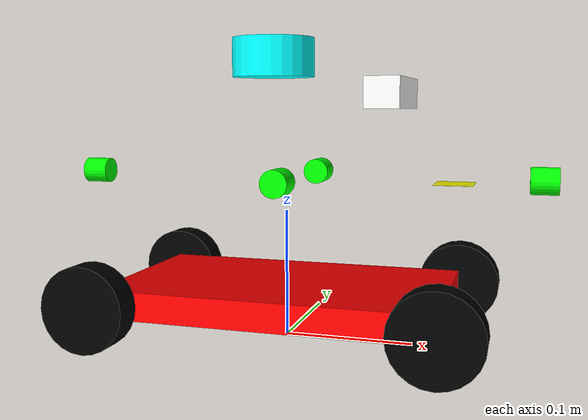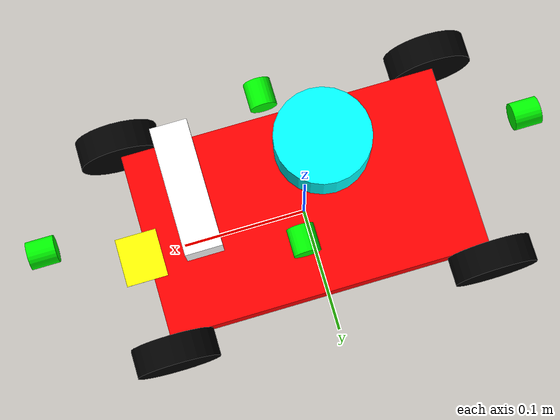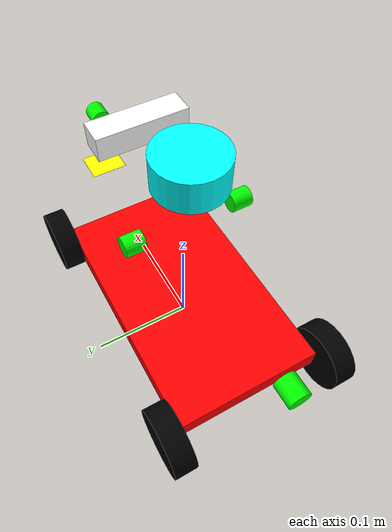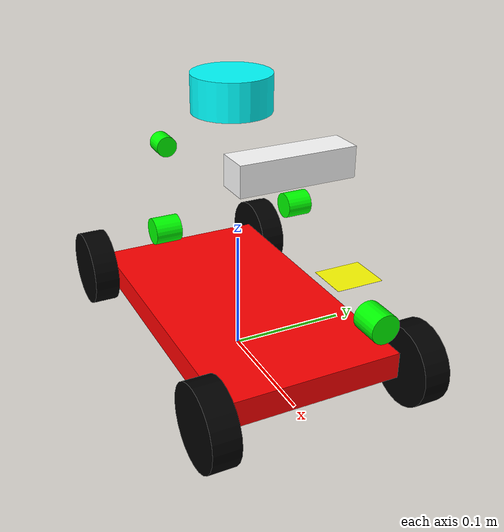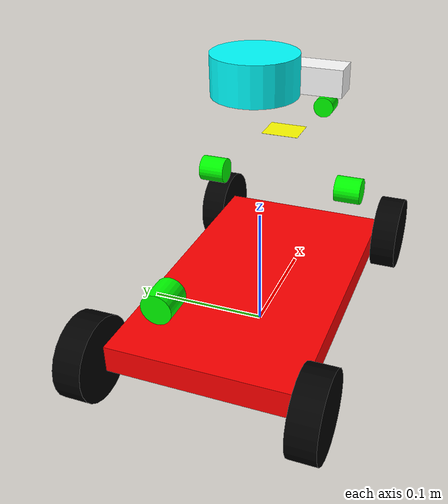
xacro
<?xml version="1.0"?>
<robot xmlns:xacro="http://www.ros.org/wiki/xacro" name="the_first_vehicle">

    <xacro:include filename="common_properties.xacro"/>
    <xacro:include filename="mobile_robot_gazebo.xacro"/>
    <xacro:property name="wheel_radius" value="0.033"/>
    <xacro:property name="wheel_width" value="0.022"/>
    <xacro:property name="chassis_length" value="0.256"/>
    <xacro:property name="csi_radius" value="0.01" />
    <xacro:property name="csi_length" value="0.02" />

    <xacro:macro name="csi" params="prefix">
        <link name="${prefix}">
           <visual>
            <geometry>
                <cylinder radius="${csi_radius}" length="${csi_length}"/>
            </geometry>
            <material name="green">
                <color rgba="0.0 1.0 0.0 1.0"/>
            </material>
            </visual>
            <collision>
                <geometry>
                    <box size="0.02 0.02 0.02"/>
                </geometry>
            </collision>

            <xacro:cylinder_inertia m="0.015" r="${csi_radius}" l="${csi_length}" o_xyz="0 0 0" o_rpy="0 0 0"/>
        </link>
    </xacro:macro>

    <xacro:macro name="wheel_link" params="prefix">
        <link name="${prefix}">
            <visual>
                <geometry>
                    <cylinder radius="${wheel_radius}" length="${wheel_width}"/>
                </geometry>
                <origin xyz="0 0 0" rpy="0 0 0"/>
                <material name="black">
                    <color rgba="0 0 0 1"/>
                </material>
            </visual>
            <collision>
                <geometry>
                    <cylinder radius="${wheel_radius}" length="${wheel_width}"/>
                </geometry>
                <origin xyz="0 0 0" rpy="0 0 0"/>
            </collision>
            <xacro:cylinder_inertia m="0.025" r="${wheel_radius}" l="${wheel_width}" o_xyz="0 0 0" o_rpy="0 0 0"/>
        </link>
    </xacro:macro>

    <link name="base_footprint"/>
    <joint name="base_joint" type="fixed">
        <parent link="base_footprint"/>
        <child link="base_link"/>
        <origin xyz="0 0 ${wheel_radius}" rpy="0 0 0"/>
    </joint>

    <link name="base_link">
        <visual>
            <geometry>
                <box size="${chassis_length} 0.148 0.022"/>
            </geometry>
            <material name="red">
                <color rgba="1 0 0 1"/>
            </material>
        </visual>
        <collision>
            <geometry>
                <box size="${chassis_length} 0.148 0.022"/>
            </geometry>
        </collision>
        <xacro:box_inertia m="0.5" l="${chassis_length}" w="0.148" h="0.022" o_xyz="0 0 0" o_rpy="0 0 0"/>
    </link>

    <xacro:wheel_link prefix="rear_left_wheel"/>
    <xacro:wheel_link prefix="rear_right_wheel"/>
    <xacro:wheel_link prefix="front_left_wheel"/>
    <xacro:wheel_link prefix="front_right_wheel"/>

    <joint name="rear_left_wheel_joint" type="continuous">
        <parent link="base_link"/>
        <child link="rear_left_wheel"/>
        <origin xyz="-0.128 -0.085 0" rpy="1.57 0 0"/>
        <axis xyz="0 0 1"/>
    </joint>

    <joint name="rear_right_wheel_joint" type="continuous">
        <parent link="base_link"/>
        <child link="rear_right_wheel"/>
        <origin xyz="-0.128 0.085 0" rpy="1.57 0 0"/>
        <axis xyz="0 0 1"/>
    </joint>

    <joint name="front_left_wheel_joint" type="continuous">
        <parent link="front_left_steering"/>
        <child link="front_left_wheel"/>
        <origin xyz="0 0 0" rpy="0 0 0"/>
        <axis xyz="0 0 1"/>
        <mimic joint="rear_left_wheel_joint" multiplier="1" offset="0"/>
    </joint>

    <link name="front_left_steering">
        <xacro:cylinder_inertia m="0.00001" r="0.003" l="0.02" o_xyz="0 0 0" o_rpy="0 0 0"/>
    </link>
    <joint name="front_left_steering_joint" type="revolute">
        <parent link="base_link"/>
        <child link="front_left_steering"/>
        <origin xyz="0.128 -0.085 0" rpy="1.57 0 0"/>
        <axis xyz="0 1 0"/>
        <limit lower="-0.5236" upper="0.5236" effort="0.0405" velocity="3.125"/>
    </joint>

    <joint name="front_right_wheel_joint" type="continuous">
        <parent link="front_right_steering"/>
        <child link="front_right_wheel"/>
        <origin xyz="0 0 0" rpy="0 0 0"/>
        <axis xyz="0 0 1"/>
        <mimic joint="rear_right_wheel_joint" multiplier="1" offset="0"/>
    </joint>

    <link name="front_right_steering">
        <xacro:cylinder_inertia m="0.00001" r="0.003" l="0.02" o_xyz="0 0 0" o_rpy="0 0 0"/>
    </link>

    <joint name="front_right_steering_joint" type="revolute">
        <parent link="base_link"/>
        <child link="front_right_steering"/>
        <origin xyz="0.128 0.085 0" rpy="1.57 0 0"/>
        <axis xyz="0 1 0"/>
        <limit lower="-0.5236" upper="0.5236" effort="0.0405" velocity="3.125"/>
    </joint>

    <xacro:csi prefix="front_csi"/>
    <xacro:csi prefix="rear_csi"/>
    <xacro:csi prefix="left_csi"/>
    <xacro:csi prefix="right_csi"/>

    <joint name="csi_front_joint" type="fixed">
        <parent link="base_link"/>
        <child link="front_csi"/>
        <origin xyz="0.193 0.0 0.0953" rpy="-1.57 0 -1.57"/>
    </joint>

    <joint name="csi_rear_joint" type="fixed">
        <parent link="base_link"/>
        <child link="rear_csi"/>
        <origin xyz="-0.165 0.0 0.0953" rpy="-1.57 0 1.57"/>
    </joint>

    <joint name="csi_left_joint" type="fixed">
        <parent link="base_link"/>
        <child link="left_csi"/>
        <origin xyz="0.014 0.0438 0.0953" rpy="-1.57 0 0"/>
    </joint>

    <joint name="csi_right_joint" type="fixed">
        <parent link="base_link"/>
        <child link="right_csi"/>
        <origin xyz="0.014 -0.0674 0.0953" rpy="-1.57 0 3.1416"/>
    </joint>

    <link name="IMU">
        <visual>
            <geometry>
                <box size="0.03 0.035 0.0001"/>
            </geometry>
            <material name="yellow">
                <color rgba="1.0 1.0 0.0 1.0"/>
            </material>
        </visual>
        <collision>
            <geometry>
                <box size="0.03 0.035 0.0001"/>
            </geometry>
        </collision>

        <xacro:box_inertia m="0.004" l="0.03" w="0.0001" h="0.035" o_xyz="0 0 0" o_rpy="1.57 0 0"/>
    </link>

    <joint name="IMU_joint" type="fixed">
        <parent link="base_link"/>
        <child link="IMU"/>
        <origin xyz="0.1278 0.0223 0.0895" rpy="0 0 0"/>
    </joint>

    <link name="realsense">
        <visual>
            <geometry>
                <box size="0.0883 0.0229 0.0255"/>
            </geometry>
            <material name="white">
                <color rgba="1.0 1.0 1.0 1.0"/>
            </material>
        </visual>
        <collision>
            <geometry>
                <box size="0.0883 0.0229 0.0255"/>
            </geometry>
        </collision>

        <xacro:box_inertia m="0.07" l="0.0883" w="0.0229" h="0.0255" o_xyz="0 0 0" o_rpy="0 0 0"/>
    </link>

    <joint name="realsense_joint" type="fixed">
        <parent link="base_link"/>
        <child link="realsense"/>
        <origin xyz="0.0822 -0.0001 0.1582" rpy="-1.57 0 -1.57"/>
    </joint>

    <link name="LiDAR">
        <visual>
            <geometry>
                <cylinder radius="0.032" length="0.03"/>
            </geometry>
            <material name="cyan">
                <color rgba="0.0 1.0 1.0 1.0"/>
            </material>
        </visual>
        <collision>
            <geometry>
                <box size="0.0324 0.0324 0.0208"/>
            </geometry>
        </collision>
        <xacro:cylinder_inertia m="0.3" r="0.032" l="0.03" o_xyz="0 0 0" o_rpy="0 0 0"/>
    </link>

    <joint name="lidar_joint" type="fixed">
        <parent link="base_link"/>
        <child link="LiDAR"/>
        <origin xyz="-0.0108 -0.0001 0.186" rpy="0 0 1.57"/>
    </joint>

</robot>

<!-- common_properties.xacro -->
<robot xmlns:xacro="http://www.ros.org/wiki/xacro">
    <material name="blue">
        <color rgba="0 0 0.5 1" />
    </material>

    <material name="green">
        <color rgba="0 0.5 0 1" />
    </material>

    <material name="grey">
        <color rgba="0.5 0.5 0.5 1" />
    </material>

    <material name="black">
        <color rgba="0.05 0.05 0.05 1" />
    </material>

    <xacro:macro name="box_inertia" params="m l w h o_xyz o_rpy">
        <inertial>
            <origin xyz="${o_xyz}" rpy="${o_rpy}"/>
            <mass value="${m}"/>
            <inertia ixx="${m*(w*w + h*h)/12}" ixy="0.0" ixz="0.0" iyy="${m*(l*l + h*h)/12}" iyz="0.0" izz="${m*(w*w + l*l)/12}"/>
        </inertial>
    </xacro:macro>

    <xacro:macro name="sphere_inertia" params="m r o_xyz o_rpy">
        <inertial>
            <origin xyz="${o_xyz}" rpy="${o_rpy}"/>
            <mass value="${m}"/>
            <inertia ixx="${2*m*r*r/5}" ixy="0.0" ixz="0.0"
                     iyy="${2*m*r*r/5}" iyz="0.0"
                     izz="${2*m*r*r/5}"/>
        </inertial>
    </xacro:macro>

    <xacro:macro name="cylinder_inertia" params="m r l o_xyz o_rpy">
        <inertial>
            <origin xyz="${o_xyz}" rpy="${o_rpy}"/>
            <mass value="${m}"/>
            <inertia ixx="${m*(3*r*r + l*l)/12}" ixy="0.0" ixz="0.0"
                     iyy="${m*(3*r*r + l*l)/12}" iyz="0.0"
                     izz="${m*r*r/2}"/>
        </inertial>
    </xacro:macro>

</robot>
